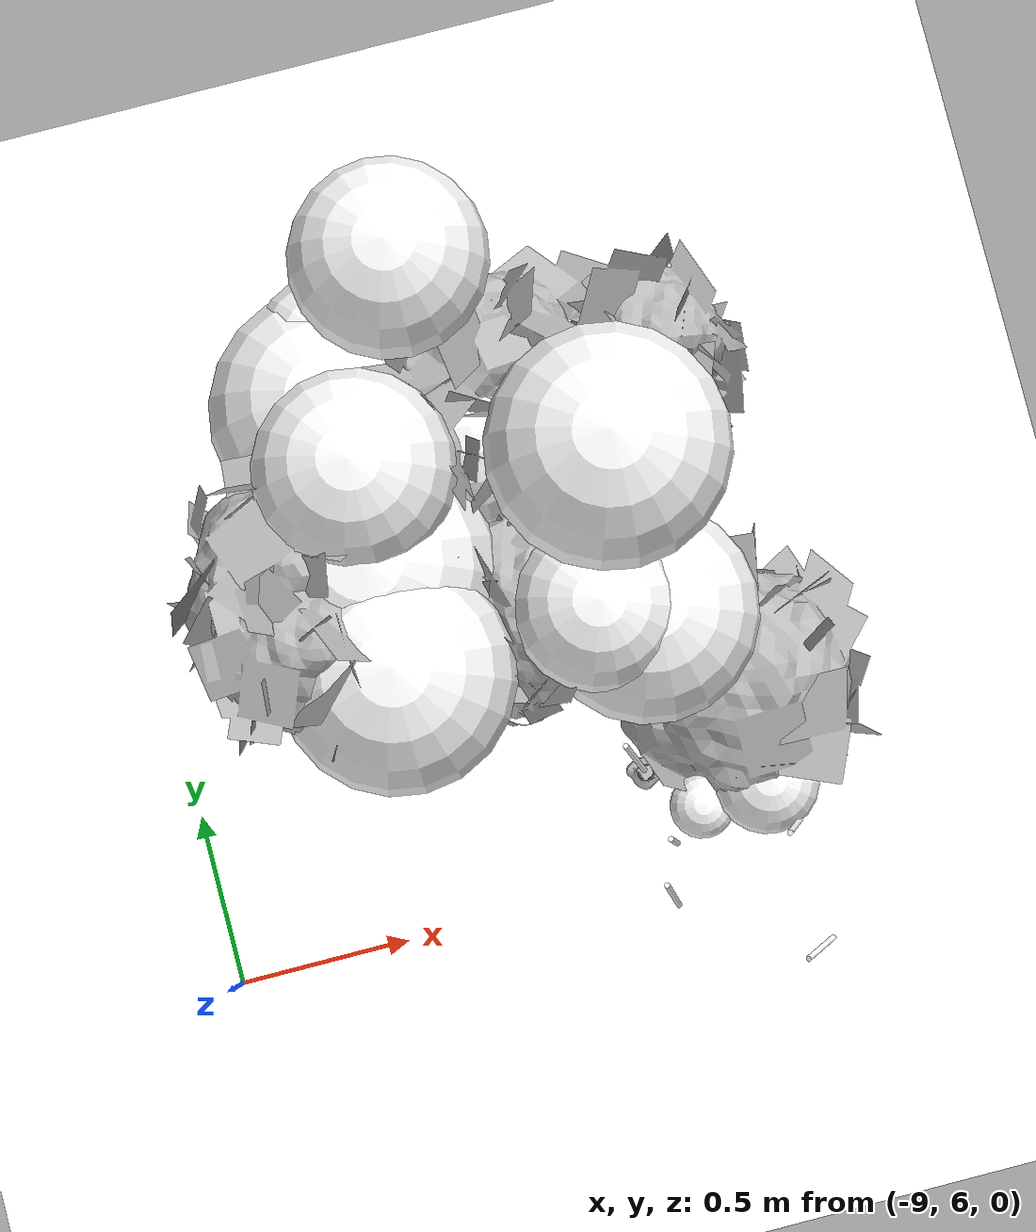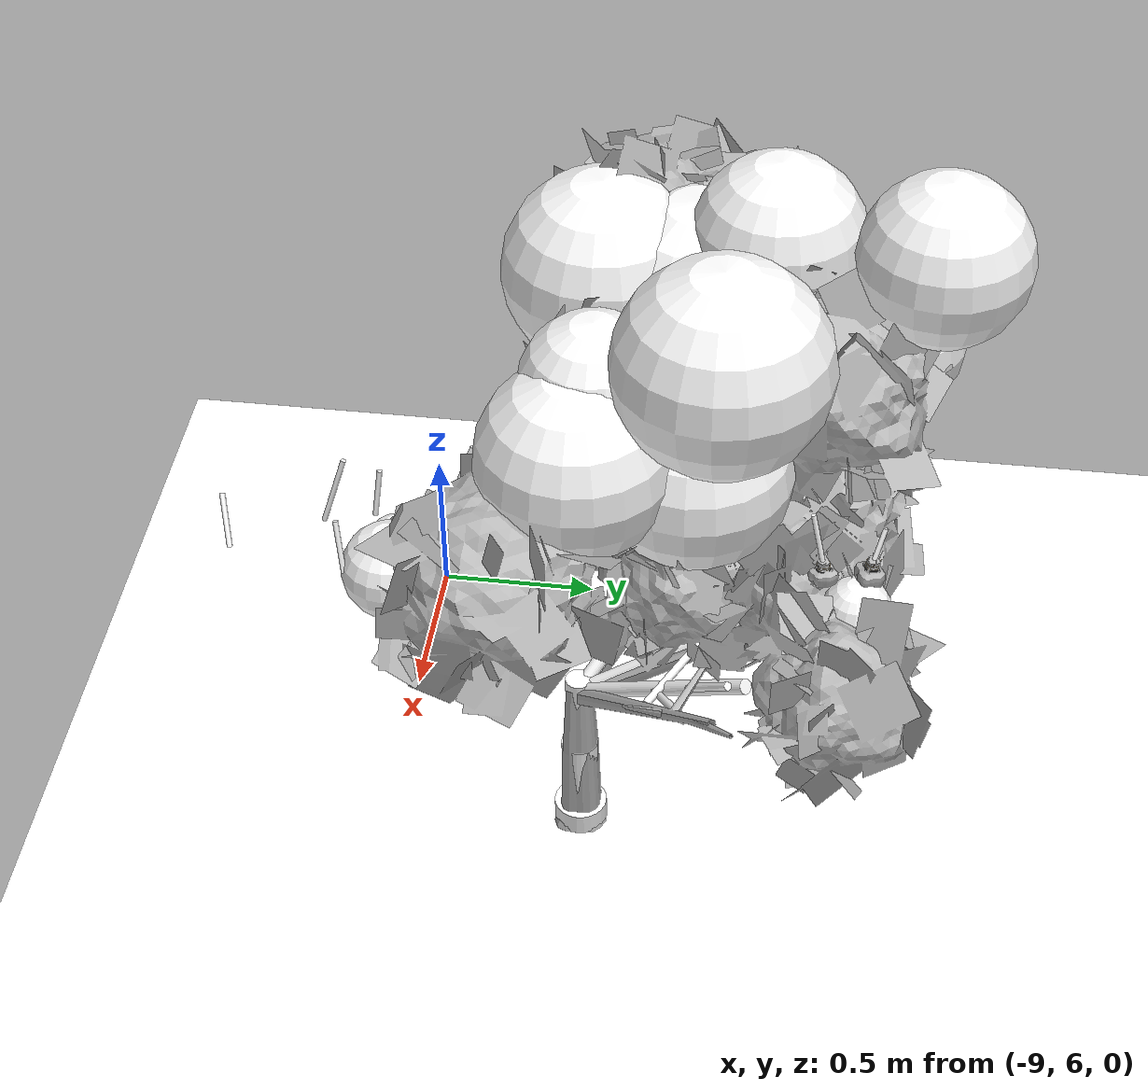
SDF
<sdf version="1.11">
 <world name="peach_orchard">
  <model name="ground">
   <static>true</static>
   <link name="link">
    <visual name="soil">
     <geometry><plane><normal>0 0 1</normal><size>32 22</size></plane></geometry>
     <material>
      <ambient>1 1 1 1</ambient>
      <diffuse>1 1 1 1</diffuse>
      <specular>0.1 0.1 0.1 1</specular>
      <pbr>
       <metal>
        <albedo_map>textures/soil_albedo.png</albedo_map>
        <normal_map type="tangent">textures/soil_normal.png</normal_map>
        <roughness>0.95</roughness>
        <metalness>0</metalness>
       </metal>
      </pbr>
     </material>
    </visual>
    <collision name="c_soil">
     <geometry><plane><normal>0 0 1</normal><size>32 22</size></plane></geometry>
    </collision>
   </link>
  </model>
  <model name="tree_r0_t6">
   <pose>-8 6.6 0 0 0 0</pose>
   <static>true</static>
   <link name="link">
    <visual name="tree_mesh">
     <pose>0 0 0 0 0 -0.0781681</pose>
     <geometry>
      <mesh><uri>model://peach_sim/meshes/peach_tree_a.glb</uri><scale>0.980483 0.980483 0.980483</scale></mesh>
     </geometry>
    </visual>
    <visual name="trunk_0">
     <pose>0 0 0.162888 0 0 0</pose>
     <geometry><cylinder><radius>0.0547791</radius><length>0.325776</length></cylinder></geometry>
     <material>
      <ambient>1 1 1 1</ambient>
      <diffuse>1 1 1 1</diffuse>
      <specular>0.1 0.1 0.1 1</specular>
      <pbr>
       <metal>
        <albedo_map>textures/bark_albedo.png</albedo_map>
        <normal_map type="tangent">textures/bark_normal.png</normal_map>
        <roughness>0.9</roughness>
        <metalness>0</metalness>
       </metal>
      </pbr>
     </material>
    </visual>
    <collision name="c_trunk_0">
     <pose>0 0 0.162888 0 0 0</pose>
     <geometry><cylinder><radius>0.0547791</radius><length>0.325776</length></cylinder></geometry>
    </collision>
    <visual name="trunk_1">
     <pose>0 0 0.459048 0 0 0</pose>
     <geometry><cylinder><radius>0.039441</radius><length>0.266544</length></cylinder></geometry>
     <material>
      <ambient>1 1 1 1</ambient>
      <diffuse>1 1 1 1</diffuse>
      <specular>0.1 0.1 0.1 1</specular>
      <pbr>
       <metal>
        <albedo_map>textures/bark_albedo.png</albedo_map>
        <normal_map type="tangent">textures/bark_normal.png</normal_map>
        <roughness>0.9</roughness>
        <metalness>0</metalness>
       </metal>
      </pbr>
     </material>
    </visual>
    <collision name="c_trunk_1">
     <pose>0 0 0.459048 0 0 0</pose>
     <geometry><cylinder><radius>0.039441</radius><length>0.266544</length></cylinder></geometry>
    </collision>
    <visual name="root_flare">
     <pose>0 0 0.035 0 0 0</pose>
     <geometry><cylinder><radius>0.0794297</radius><length>0.07</length></cylinder></geometry>
     <material>
      <ambient>1 1 1 1</ambient>
      <diffuse>1 1 1 1</diffuse>
      <specular>0.1 0.1 0.1 1</specular>
      <pbr>
       <metal>
        <albedo_map>textures/bark_albedo.png</albedo_map>
        <normal_map type="tangent">textures/bark_normal.png</normal_map>
        <roughness>0.95</roughness>
        <metalness>0</metalness>
       </metal>
      </pbr>
     </material>
    </visual>
    <visual name="scaffold_0">
     <pose>-0.0174406 0.378616 0.793169 0 0.990955 1.61683</pose>
     <geometry><cylinder><radius>0.022</radius><length>0.906145</length></cylinder></geometry>
     <material>
      <ambient>1 1 1 1</ambient>
      <diffuse>1 1 1 1</diffuse>
      <specular>0.1 0.1 0.1 1</specular>
      <pbr>
       <metal>
        <albedo_map>textures/bark_albedo.png</albedo_map>
        <normal_map type="tangent">textures/bark_normal.png</normal_map>
        <roughness>0.9</roughness>
        <metalness>0</metalness>
       </metal>
      </pbr>
     </material>
    </visual>
    <collision name="c_scaffold_0">
     <pose>-0.0174406 0.378616 0.793169 0 0.990955 1.61683</pose>
     <geometry><cylinder><radius>0.022</radius><length>0.906145</length></cylinder></geometry>
    </collision>
    <visual name="branchlet_0_0">
     <pose>0.0585909 0.567234 1.08269 0 0.566728 -0.358596</pose>
     <geometry><cylinder><radius>0.012</radius><length>0.342965</length></cylinder></geometry>
     <material>
      <ambient>1 1 1 1</ambient>
      <diffuse>1 1 1 1</diffuse>
      <specular>0.1 0.1 0.1 1</specular>
      <pbr>
       <metal>
        <albedo_map>textures/bark_albedo.png</albedo_map>
        <normal_map type="tangent">textures/bark_normal.png</normal_map>
        <roughness>0.9</roughness>
        <metalness>0</metalness>
       </metal>
      </pbr>
     </material>
    </visual>
    <visual name="branchlet_0_1">
     <pose>0.112618 0.292505 0.771448 0 1.63039 -0.473617</pose>
     <geometry><cylinder><radius>0.012</radius><length>0.290744</length></cylinder></geometry>
     <material>
      <ambient>1 1 1 1</ambient>
      <diffuse>1 1 1 1</diffuse>
      <specular>0.1 0.1 0.1 1</specular>
      <pbr>
       <metal>
        <albedo_map>textures/bark_albedo.png</albedo_map>
        <normal_map type="tangent">textures/bark_normal.png</normal_map>
        <roughness>0.9</roughness>
        <metalness>0</metalness>
       </metal>
      </pbr>
     </material>
    </visual>
    <visual name="branchlet_0_2">
     <pose>0.00428777 0.702797 0.989132 0 1.12587 1.2773</pose>
     <geometry><cylinder><radius>0.012</radius><length>0.243652</length></cylinder></geometry>
     <material>
      <ambient>1 1 1 1</ambient>
      <diffuse>1 1 1 1</diffuse>
      <specular>0.1 0.1 0.1 1</specular>
      <pbr>
       <metal>
        <albedo_map>textures/bark_albedo.png</albedo_map>
        <normal_map type="tangent">textures/bark_normal.png</normal_map>
        <roughness>0.9</roughness>
        <metalness>0</metalness>
       </metal>
      </pbr>
     </material>
    </visual>
    <visual name="scaffold_1">
     <pose>0.149773 0.254208 0.737338 0 0.992942 1.03838</pose>
     <geometry><cylinder><radius>0.022</radius><length>0.704479</length></cylinder></geometry>
     <material>
      <ambient>1 1 1 1</ambient>
      <diffuse>1 1 1 1</diffuse>
      <specular>0.1 0.1 0.1 1</specular>
      <pbr>
       <metal>
        <albedo_map>textures/bark_albedo.png</albedo_map>
        <normal_map type="tangent">textures/bark_normal.png</normal_map>
        <roughness>0.9</roughness>
        <metalness>0</metalness>
       </metal>
      </pbr>
     </material>
    </visual>
    <collision name="c_scaffold_1">
     <pose>0.149773 0.254208 0.737338 0 0.992942 1.03838</pose>
     <geometry><cylinder><radius>0.022</radius><length>0.704479</length></cylinder></geometry>
    </collision>
    <visual name="branchlet_1_0">
     <pose>0.248428 0.385078 0.859269 0 0.897387 0.852193</pose>
     <geometry><cylinder><radius>0.012</radius><length>0.256629</length></cylinder></geometry>
     <material>
      <ambient>1 1 1 1</ambient>
      <diffuse>1 1 1 1</diffuse>
      <specular>0.1 0.1 0.1 1</specular>
      <pbr>
       <metal>
        <albedo_map>textures/bark_albedo.png</albedo_map>
        <normal_map type="tangent">textures/bark_normal.png</normal_map>
        <roughness>0.9</roughness>
        <metalness>0</metalness>
       </metal>
      </pbr>
     </material>
    </visual>
    <visual name="branchlet_1_1">
     <pose>0.268327 0.292479 0.800905 0 1.06685 0.420908</pose>
     <geometry><cylinder><radius>0.012</radius><length>0.326302</length></cylinder></geometry>
     <material>
      <ambient>1 1 1 1</ambient>
      <diffuse>1 1 1 1</diffuse>
      <specular>0.1 0.1 0.1 1</specular>
      <pbr>
       <metal>
        <albedo_map>textures/bark_albedo.png</albedo_map>
        <normal_map type="tangent">textures/bark_normal.png</normal_map>
        <roughness>0.9</roughness>
        <metalness>0</metalness>
       </metal>
      </pbr>
     </material>
    </visual>
    <visual name="scaffold_2">
     <pose>-0.267067 0.242515 0.846124 0 0.875133 2.40434</pose>
     <geometry><cylinder><radius>0.022</radius><length>0.939901</length></cylinder></geometry>
     <material>
      <ambient>1 1 1 1</ambient>
      <diffuse>1 1 1 1</diffuse>
      <specular>0.1 0.1 0.1 1</specular>
      <pbr>
       <metal>
        <albedo_map>textures/bark_albedo.png</albedo_map>
        <normal_map type="tangent">textures/bark_normal.png</normal_map>
        <roughness>0.9</roughness>
        <metalness>0</metalness>
       </metal>
      </pbr>
     </material>
    </visual>
    <collision name="c_scaffold_2">
     <pose>-0.267067 0.242515 0.846124 0 0.875133 2.40434</pose>
     <geometry><cylinder><radius>0.022</radius><length>0.939901</length></cylinder></geometry>
    </collision>
    <visual name="branchlet_2_0">
     <pose>-0.21485 0.131584 0.954682 0 0.688994 -1.2078</pose>
     <geometry><cylinder><radius>0.012</radius><length>0.326259</length></cylinder></geometry>
     <material>
      <ambient>1 1 1 1</ambient>
      <diffuse>1 1 1 1</diffuse>
      <specular>0.1 0.1 0.1 1</specular>
      <pbr>
       <metal>
        <albedo_map>textures/bark_albedo.png</albedo_map>
        <normal_map type="tangent">textures/bark_normal.png</normal_map>
        <roughness>0.9</roughness>
        <metalness>0</metalness>
       </metal>
      </pbr>
     </material>
    </visual>
    <visual name="branchlet_2_1">
     <pose>-0.569601 0.468223 1.04753 0 1.50868 2.6485</pose>
     <geometry><cylinder><radius>0.012</radius><length>0.30078</length></cylinder></geometry>
     <material>
      <ambient>1 1 1 1</ambient>
      <diffuse>1 1 1 1</diffuse>
      <specular>0.1 0.1 0.1 1</specular>
      <pbr>
       <metal>
        <albedo_map>textures/bark_albedo.png</albedo_map>
        <normal_map type="tangent">textures/bark_normal.png</normal_map>
        <roughness>0.9</roughness>
        <metalness>0</metalness>
       </metal>
      </pbr>
     </material>
    </visual>
    <visual name="canopy_0">
     <pose>-0.0832478 0.94194 2.13016 0 0 0</pose>
     <geometry><sphere><radius>0.229958</radius></sphere></geometry>
     <material>
      <ambient>1 1 1 1</ambient>
      <diffuse>1 1 1 1</diffuse>
      <specular>0.1 0.1 0.1 1</specular>
      <pbr>
       <metal>
        <albedo_map>textures/leaf_albedo.png</albedo_map>
        <normal_map type="tangent">textures/leaf_normal.png</normal_map>
        <roughness>0.85</roughness>
        <metalness>0</metalness>
       </metal>
      </pbr>
     </material>
    </visual>
    <collision name="c_canopy_0">
     <pose>-0.0832478 0.94194 2.13016 0 0 0</pose>
     <geometry><sphere><radius>0.229958</radius></sphere></geometry>
    </collision>
    <visual name="canopy_1">
     <pose>0.29434 0.419337 2.03276 0 0 0</pose>
     <geometry><sphere><radius>0.285725</radius></sphere></geometry>
     <material>
      <ambient>1 1 1 1</ambient>
      <diffuse>1 1 1 1</diffuse>
      <specular>0.1 0.1 0.1 1</specular>
      <pbr>
       <metal>
        <albedo_map>textures/leaf_albedo.png</albedo_map>
        <normal_map type="tangent">textures/leaf_normal.png</normal_map>
        <roughness>0.85</roughness>
        <metalness>0</metalness>
       </metal>
      </pbr>
     </material>
    </visual>
    <collision name="c_canopy_1">
     <pose>0.29434 0.419337 2.03276 0 0 0</pose>
     <geometry><sphere><radius>0.285725</radius></sphere></geometry>
    </collision>
    <visual name="canopy_2">
     <pose>-0.306476 0.303746 1.78702 0 0 0</pose>
     <geometry><sphere><radius>0.308704</radius></sphere></geometry>
     <material>
      <ambient>1 1 1 1</ambient>
      <diffuse>1 1 1 1</diffuse>
      <specular>0.1 0.1 0.1 1</specular>
      <pbr>
       <metal>
        <albedo_map>textures/leaf_albedo.png</albedo_map>
        <normal_map type="tangent">textures/leaf_normal.png</normal_map>
        <roughness>0.85</roughness>
        <metalness>0</metalness>
       </metal>
      </pbr>
     </material>
    </visual>
    <collision name="c_canopy_2">
     <pose>-0.306476 0.303746 1.78702 0 0 0</pose>
     <geometry><sphere><radius>0.308704</radius></sphere></geometry>
    </collision>
    <visual name="canopy_3">
     <pose>-0.254885 0.821229 1.74167 0 0 0</pose>
     <geometry><sphere><radius>0.206323</radius></sphere></geometry>
     <material>
      <ambient>1 1 1 1</ambient>
      <diffuse>1 1 1 1</diffuse>
      <specular>0.1 0.1 0.1 1</specular>
      <pbr>
       <metal>
        <albedo_map>textures/leaf_albedo.png</albedo_map>
        <normal_map type="tangent">textures/leaf_normal.png</normal_map>
        <roughness>0.85</roughness>
        <metalness>0</metalness>
       </metal>
      </pbr>
     </material>
    </visual>
    <visual name="canopy_4">
     <pose>0.306445 0.0513098 1.70699 0 0 0</pose>
     <geometry><sphere><radius>0.26745</radius></sphere></geometry>
     <material>
      <ambient>1 1 1 1</ambient>
      <diffuse>1 1 1 1</diffuse>
      <specular>0.1 0.1 0.1 1</specular>
      <pbr>
       <metal>
        <albedo_map>textures/leaf_albedo.png</albedo_map>
        <normal_map type="tangent">textures/leaf_normal.png</normal_map>
        <roughness>0.85</roughness>
        <metalness>0</metalness>
       </metal>
      </pbr>
     </material>
    </visual>
    <visual name="canopy_5">
     <pose>-0.3017 0.0445093 1.86036 0 0 0</pose>
     <geometry><sphere><radius>0.280439</radius></sphere></geometry>
     <material>
      <ambient>1 1 1 1</ambient>
      <diffuse>1 1 1 1</diffuse>
      <specular>0.1 0.1 0.1 1</specular>
      <pbr>
       <metal>
        <albedo_map>textures/leaf_albedo.png</albedo_map>
        <normal_map type="tangent">textures/leaf_normal.png</normal_map>
        <roughness>0.85</roughness>
        <metalness>0</metalness>
       </metal>
      </pbr>
     </material>
    </visual>
    <visual name="canopy_6">
     <pose>-0.278276 0.511084 2.01604 0 0 0</pose>
     <geometry><sphere><radius>0.236681</radius></sphere></geometry>
     <material>
      <ambient>1 1 1 1</ambient>
      <diffuse>1 1 1 1</diffuse>
      <specular>0.1 0.1 0.1 1</specular>
      <pbr>
       <metal>
        <albedo_map>textures/leaf_albedo.png</albedo_map>
        <normal_map type="tangent">textures/leaf_normal.png</normal_map>
        <roughness>0.85</roughness>
        <metalness>0</metalness>
       </metal>
      </pbr>
     </material>
    </visual>
    <visual name="canopy_7">
     <pose>0.18785 0.0845961 1.85243 0 0 0</pose>
     <geometry><sphere><radius>0.201246</radius></sphere></geometry>
     <material>
      <ambient>1 1 1 1</ambient>
      <diffuse>1 1 1 1</diffuse>
      <specular>0.1 0.1 0.1 1</specular>
      <pbr>
       <metal>
        <albedo_map>textures/leaf_albedo.png</albedo_map>
        <normal_map type="tangent">textures/leaf_normal.png</normal_map>
        <roughness>0.85</roughness>
        <metalness>0</metalness>
       </metal>
      </pbr>
     </material>
    </visual>
    <visual name="canopy_8">
     <pose>-0.300096 0.706661 1.69822 0 0 0</pose>
     <geometry><sphere><radius>0.29467</radius></sphere></geometry>
     <material>
      <ambient>1 1 1 1</ambient>
      <diffuse>1 1 1 1</diffuse>
      <specular>0.1 0.1 0.1 1</specular>
      <pbr>
       <metal>
        <albedo_map>textures/leaf_albedo.png</albedo_map>
        <normal_map type="tangent">textures/leaf_normal.png</normal_map>
        <roughness>0.85</roughness>
        <metalness>0</metalness>
       </metal>
      </pbr>
     </material>
    </visual>
    <visual name="canopy_9">
     <pose>0.188999 0.346029 1.60002 0 0 0</pose>
     <geometry><sphere><radius>0.262658</radius></sphere></geometry>
     <material>
      <ambient>1 1 1 1</ambient>
      <diffuse>1 1 1 1</diffuse>
      <specular>0.1 0.1 0.1 1</specular>
      <pbr>
       <metal>
        <albedo_map>textures/leaf_albedo.png</albedo_map>
        <normal_map type="tangent">textures/leaf_normal.png</normal_map>
        <roughness>0.85</roughness>
        <metalness>0</metalness>
       </metal>
      </pbr>
     </material>
    </visual>
    <visual name="canopy_10">
     <pose>0.000163594 0.549046 1.76894 0 0 0</pose>
     <geometry><sphere><radius>0.217612</radius></sphere></geometry>
     <material>
      <ambient>1 1 1 1</ambient>
      <diffuse>1 1 1 1</diffuse>
      <specular>0.1 0.1 0.1 1</specular>
      <pbr>
       <metal>
        <albedo_map>textures/leaf_albedo.png</albedo_map>
        <normal_map type="tangent">textures/leaf_normal.png</normal_map>
        <roughness>0.85</roughness>
        <metalness>0</metalness>
       </metal>
      </pbr>
     </material>
    </visual>
    <visual name="foliage_0">
     <pose>0.500157 -0.406352 1.44862 0 0 0</pose>
     <geometry><sphere><radius>0.12915</radius></sphere></geometry>
     <material>
      <ambient>1 1 1 1</ambient>
      <diffuse>1 1 1 1</diffuse>
      <specular>0.1 0.1 0.1 1</specular>
      <pbr>
       <metal>
        <albedo_map>textures/leaf_albedo.png</albedo_map>
        <normal_map type="tangent">textures/leaf_normal.png</normal_map>
        <roughness>0.85</roughness>
        <metalness>0</metalness>
       </metal>
      </pbr>
     </material>
    </visual>
    <visual name="foliage_4">
     <pose>0.336263 -0.425211 1.38722 0 0 0</pose>
     <geometry><sphere><radius>0.0808137</radius></sphere></geometry>
     <material>
      <ambient>1 1 1 1</ambient>
      <diffuse>1 1 1 1</diffuse>
      <specular>0.1 0.1 0.1 1</specular>
      <pbr>
       <metal>
        <albedo_map>textures/leaf_albedo.png</albedo_map>
        <normal_map type="tangent">textures/leaf_normal.png</normal_map>
        <roughness>0.85</roughness>
        <metalness>0</metalness>
       </metal>
      </pbr>
     </material>
    </visual>
    <visual name="foliage_8">
     <pose>0.256496 0.793177 1.21115 0 0 0</pose>
     <geometry><sphere><radius>0.0960861</radius></sphere></geometry>
     <material>
      <ambient>1 1 1 1</ambient>
      <diffuse>1 1 1 1</diffuse>
      <specular>0.1 0.1 0.1 1</specular>
      <pbr>
       <metal>
        <albedo_map>textures/leaf_albedo.png</albedo_map>
        <normal_map type="tangent">textures/leaf_normal.png</normal_map>
        <roughness>0.85</roughness>
        <metalness>0</metalness>
       </metal>
      </pbr>
     </material>
    </visual>
    <visual name="twig_0">
     <pose>0.556668 -0.433813 1.48305 0 0.628923 2.71942</pose>
     <geometry><cylinder><radius>0.007</radius><length>0.129397</length></cylinder></geometry>
     <material>
      <ambient>1 1 1 1</ambient>
      <diffuse>1 1 1 1</diffuse>
      <specular>0.1 0.1 0.1 1</specular>
      <pbr>
       <metal>
        <albedo_map>textures/bark_albedo.png</albedo_map>
        <normal_map type="tangent">textures/bark_normal.png</normal_map>
        <roughness>0.9</roughness>
        <metalness>0</metalness>
       </metal>
      </pbr>
     </material>
    </visual>
    <visual name="twig_1">
     <pose>0.530211 -0.527851 1.53996 0 0.346634 -2.68987</pose>
     <geometry><cylinder><radius>0.007</radius><length>0.143321</length></cylinder></geometry>
     <material>
      <ambient>1 1 1 1</ambient>
      <diffuse>1 1 1 1</diffuse>
      <specular>0.1 0.1 0.1 1</specular>
      <pbr>
       <metal>
        <albedo_map>textures/bark_albedo.png</albedo_map>
        <normal_map type="tangent">textures/bark_normal.png</normal_map>
        <roughness>0.9</roughness>
        <metalness>0</metalness>
       </metal>
      </pbr>
     </material>
    </visual>
    <visual name="twig_2">
     <pose>0.511606 -0.823391 1.58202 0 0.665835 -2.81083</pose>
     <geometry><cylinder><radius>0.007</radius><length>0.138932</length></cylinder></geometry>
     <material>
      <ambient>1 1 1 1</ambient>
      <diffuse>1 1 1 1</diffuse>
      <specular>0.1 0.1 0.1 1</specular>
      <pbr>
       <metal>
        <albedo_map>textures/bark_albedo.png</albedo_map>
        <normal_map type="tangent">textures/bark_normal.png</normal_map>
        <roughness>0.9</roughness>
        <metalness>0</metalness>
       </metal>
      </pbr>
     </material>
    </visual>
    <visual name="twig_3">
     <pose>0.200704 -0.275771 1.51105 0 0.395341 2.08835</pose>
     <geometry><cylinder><radius>0.007</radius><length>0.211422</length></cylinder></geometry>
     <material>
      <ambient>1 1 1 1</ambient>
      <diffuse>1 1 1 1</diffuse>
      <specular>0.1 0.1 0.1 1</specular>
      <pbr>
       <metal>
        <albedo_map>textures/bark_albedo.png</albedo_map>
        <normal_map type="tangent">textures/bark_normal.png</normal_map>
        <roughness>0.9</roughness>
        <metalness>0</metalness>
       </metal>
      </pbr>
     </material>
    </visual>
    <visual name="twig_4">
     <pose>0.242229 -0.491055 1.47615 0 0.185583 2.47585</pose>
     <geometry><cylinder><radius>0.007</radius><length>0.139937</length></cylinder></geometry>
     <material>
      <ambient>1 1 1 1</ambient>
      <diffuse>1 1 1 1</diffuse>
      <specular>0.1 0.1 0.1 1</specular>
      <pbr>
       <metal>
        <albedo_map>textures/bark_albedo.png</albedo_map>
        <normal_map type="tangent">textures/bark_normal.png</normal_map>
        <roughness>0.9</roughness>
        <metalness>0</metalness>
       </metal>
      </pbr>
     </material>
    </visual>
    <visual name="twig_5">
     <pose>0.208342 -0.618457 1.44106 0 0.328035 1.97627</pose>
     <geometry><cylinder><radius>0.007</radius><length>0.204619</length></cylinder></geometry>
     <material>
      <ambient>1 1 1 1</ambient>
      <diffuse>1 1 1 1</diffuse>
      <specular>0.1 0.1 0.1 1</specular>
      <pbr>
       <metal>
        <albedo_map>textures/bark_albedo.png</albedo_map>
        <normal_map type="tangent">textures/bark_normal.png</normal_map>
        <roughness>0.9</roughness>
        <metalness>0</metalness>
       </metal>
      </pbr>
     </material>
    </visual>
    <visual name="twig_6">
     <pose>0.201865 0.484204 1.50765 0 0.412351 2.11364</pose>
     <geometry><cylinder><radius>0.007</radius><length>0.214826</length></cylinder></geometry>
     <material>
      <ambient>1 1 1 1</ambient>
      <diffuse>1 1 1 1</diffuse>
      <specular>0.1 0.1 0.1 1</specular>
      <pbr>
       <metal>
        <albedo_map>textures/bark_albedo.png</albedo_map>
        <normal_map type="tangent">textures/bark_normal.png</normal_map>
        <roughness>0.9</roughness>
        <metalness>0</metalness>
       </metal>
      </pbr>
     </material>
    </visual>
    <visual name="twig_7">
     <pose>0.208407 0.6782 1.40717 0 0.262333 -2.15284</pose>
     <geometry><cylinder><radius>0.007</radius><length>0.162631</length></cylinder></geometry>
     <material>
      <ambient>1 1 1 1</ambient>
      <diffuse>1 1 1 1</diffuse>
      <specular>0.1 0.1 0.1 1</specular>
      <pbr>
       <metal>
        <albedo_map>textures/bark_albedo.png</albedo_map>
        <normal_map type="tangent">textures/bark_normal.png</normal_map>
        <roughness>0.9</roughness>
        <metalness>0</metalness>
       </metal>
      </pbr>
     </material>
    </visual>
    <visual name="twig_8">
     <pose>0.195031 0.837857 1.39117 0 0.494541 2.57609</pose>
     <geometry><cylinder><radius>0.007</radius><length>0.107332</length></cylinder></geometry>
     <material>
      <ambient>1 1 1 1</ambient>
      <diffuse>1 1 1 1</diffuse>
      <specular>0.1 0.1 0.1 1</specular>
      <pbr>
       <metal>
        <albedo_map>textures/bark_albedo.png</albedo_map>
        <normal_map type="tangent">textures/bark_normal.png</normal_map>
        <roughness>0.9</roughness>
        <metalness>0</metalness>
       </metal>
      </pbr>
     </material>
    </visual>
   </link>
  </model>
  <model name="peach_tree_r0_t6_03">
   <pose>-7.78 6.29163 1.34357 0 0.0415538 -1.27531</pose>
   <static>true</static>
   <link name="bag">
    <visual name="bag_mesh">
     <pose>0 0 0.0439872 0 0 -0</pose>
     <geometry>
      <mesh><uri>model://peach_sim/meshes/bagged_peach.glb</uri><scale>0.992561 1.17944 0.999709</scale></mesh>
     </geometry>
    </visual>
    <visual name="body">
     <pose>0 0 0.0259872 0 0 0</pose>
     <geometry><ellipsoid><radii>0.037221 0.0306653 0.0280662</radii></ellipsoid></geometry>
     <material>
      <ambient>1 1 1 1</ambient>
      <diffuse>1 1 1 1</diffuse>
      <specular>0.1 0.1 0.1 1</specular>
      <pbr>
       <metal>
        <albedo_map>textures/paper_bag_albedo.png</albedo_map>
        <normal_map type="tangent">textures/paper_bag_normal.png</normal_map>
        <roughness>0.72</roughness>
        <metalness>0</metalness>
       </metal>
      </pbr>
     </material>
    </visual>
    <visual name="bottom_fold">
     <pose>0 0 0.012 0 0 0.35</pose>
     <geometry><box><size>0.0576926 0.0352651 0.022</size></box></geometry>
     <material>
      <ambient>1 1 1 1</ambient>
      <diffuse>1 1 1 1</diffuse>
      <specular>0.1 0.1 0.1 1</specular>
      <pbr>
       <metal>
        <albedo_map>textures/paper_bag_albedo.png</albedo_map>
        <normal_map type="tangent">textures/paper_bag_normal.png</normal_map>
        <roughness>0.8</roughness>
        <metalness>0</metalness>
       </metal>
      </pbr>
     </material>
    </visual>
    <visual name="fruit">
     <pose>0 0 0.0185827 0 0 0</pose>
     <geometry><sphere><radius>0.025566</radius></sphere></geometry>
     <material>
      <ambient>1 1 1 1</ambient>
      <diffuse>1 1 1 1</diffuse>
      <specular>0.1 0.1 0.1 1</specular>
      <pbr>
       <metal>
        <albedo_map>textures/fruit_skin_albedo.png</albedo_map>
        <normal_map type="tangent">textures/fruit_skin_normal.png</normal_map>
        <roughness>0.55</roughness>
        <metalness>0</metalness>
       </metal>
      </pbr>
     </material>
    </visual>
    <visual name="neck">
     <pose>0 0 0.0609744 0 0 0</pose>
     <geometry><cylinder><radius>0.013</radius><length>0.018</length></cylinder></geometry>
     <material>
      <ambient>1 1 1 1</ambient>
      <diffuse>1 1 1 1</diffuse>
      <specular>0.1 0.1 0.1 1</specular>
      <pbr>
       <metal>
        <albedo_map>textures/paper_bag_albedo.png</albedo_map>
        <normal_map type="tangent">textures/paper_bag_normal.png</normal_map>
        <roughness>0.75</roughness>
        <metalness>0</metalness>
       </metal>
      </pbr>
     </material>
    </visual>
    <visual name="gather">
     <pose>0 0 0.0419744 0 0 0</pose>
     <geometry><cylinder><radius>0.019</radius><length>0.02</length></cylinder></geometry>
     <material>
      <ambient>1 1 1 1</ambient>
      <diffuse>1 1 1 1</diffuse>
      <specular>0.1 0.1 0.1 1</specular>
      <pbr>
       <metal>
        <albedo_map>textures/paper_bag_albedo.png</albedo_map>
        <normal_map type="tangent">textures/paper_bag_normal.png</normal_map>
        <roughness>0.8</roughness>
        <metalness>0</metalness>
       </metal>
      </pbr>
     </material>
    </visual>
    <visual name="inner_paper">
     <pose>0 0 0.0659744 0 0 0</pose>
     <geometry><cylinder><radius>0.01</radius><length>0.008</length></cylinder></geometry>
     <material>
      <ambient>0.180392 0.14902 0.133333 1</ambient>
      <diffuse>0.180392 0.14902 0.133333 1</diffuse>
      <specular>0.1 0.1 0.1 1</specular>
     </material>
    </visual>
    <visual name="wire_0">
     <pose>0 0 0.0559744 0 0 0</pose>
     <geometry><cylinder><radius>0.0205</radius><length>0.0035</length></cylinder></geometry>
     <material>
      <ambient>0.25 0.25 0.25 1</ambient>
      <diffuse>0.25 0.25 0.25 1</diffuse>
      <specular>0.1 0.1 0.1 1</specular>
     </material>
    </visual>
    <visual name="wire_1">
     <pose>0 0 0.0629744 0 0 0</pose>
     <geometry><cylinder><radius>0.0205</radius><length>0.0035</length></cylinder></geometry>
     <material>
      <ambient>0.25 0.25 0.25 1</ambient>
      <diffuse>0.25 0.25 0.25 1</diffuse>
      <specular>0.1 0.1 0.1 1</specular>
     </material>
    </visual>
    <visual name="wire_tail">
     <pose>0.01 0 0.0639744 0 0.521618 0</pose>
     <geometry><cylinder><radius>0.0012</radius><length>0.026</length></cylinder></geometry>
     <material>
      <ambient>0.25 0.25 0.25 1</ambient>
      <diffuse>0.25 0.25 0.25 1</diffuse>
      <specular>0.1 0.1 0.1 1</specular>
     </material>
    </visual>
    <collision name="c_body">
     <pose>0 0 0.0259872 0 0 0</pose>
     <geometry><cylinder><radius>0.037221</radius><length>0.0519744</length></cylinder></geometry>
    </collision>
   </link>
  </model>
  <model name="peach_tree_r0_t6_06">
   <pose>-7.78 7.05106 1.3363 0 0.0757611 -0.736358</pose>
   <static>true</static>
   <link name="bag">
    <visual name="bag_mesh">
     <pose>0 0 0.0455759 0 0 -0</pose>
     <geometry>
      <mesh><uri>model://peach_sim/meshes/bagged_peach.glb</uri><scale>0.930754 1.00698 1.03582</scale></mesh>
     </geometry>
    </visual>
    <visual name="body">
     <pose>0 0 0.0275759 0 0 0</pose>
     <geometry><ellipsoid><radii>0.0349033 0.0261815 0.029782</radii></ellipsoid></geometry>
     <material>
      <ambient>1 1 1 1</ambient>
      <diffuse>1 1 1 1</diffuse>
      <specular>0.1 0.1 0.1 1</specular>
      <pbr>
       <metal>
        <albedo_map>textures/paper_bag_albedo.png</albedo_map>
        <normal_map type="tangent">textures/paper_bag_normal.png</normal_map>
        <roughness>0.72</roughness>
        <metalness>0</metalness>
       </metal>
      </pbr>
     </material>
    </visual>
    <visual name="bottom_fold">
     <pose>0 0 0.012 0 0 0.35</pose>
     <geometry><box><size>0.0541001 0.0301087 0.022</size></box></geometry>
     <material>
      <ambient>1 1 1 1</ambient>
      <diffuse>1 1 1 1</diffuse>
      <specular>0.1 0.1 0.1 1</specular>
      <pbr>
       <metal>
        <albedo_map>textures/paper_bag_albedo.png</albedo_map>
        <normal_map type="tangent">textures/paper_bag_normal.png</normal_map>
        <roughness>0.8</roughness>
        <metalness>0</metalness>
       </metal>
      </pbr>
     </material>
    </visual>
    <visual name="fruit">
     <pose>0 0 0.0206564 0 0 0</pose>
     <geometry><sphere><radius>0.0277227</radius></sphere></geometry>
     <material>
      <ambient>1 1 1 1</ambient>
      <diffuse>1 1 1 1</diffuse>
      <specular>0.1 0.1 0.1 1</specular>
      <pbr>
       <metal>
        <albedo_map>textures/fruit_skin_albedo.png</albedo_map>
        <normal_map type="tangent">textures/fruit_skin_normal.png</normal_map>
        <roughness>0.55</roughness>
        <metalness>0</metalness>
       </metal>
      </pbr>
     </material>
    </visual>
    <visual name="neck">
     <pose>0 0 0.0641518 0 0 0</pose>
     <geometry><cylinder><radius>0.013</radius><length>0.018</length></cylinder></geometry>
     <material>
      <ambient>1 1 1 1</ambient>
      <diffuse>1 1 1 1</diffuse>
      <specular>0.1 0.1 0.1 1</specular>
      <pbr>
       <metal>
        <albedo_map>textures/paper_bag_albedo.png</albedo_map>
        <normal_map type="tangent">textures/paper_bag_normal.png</normal_map>
        <roughness>0.75</roughness>
        <metalness>0</metalness>
       </metal>
      </pbr>
     </material>
    </visual>
    <visual name="gather">
     <pose>0 0 0.0451518 0 0 0</pose>
     <geometry><cylinder><radius>0.019</radius><length>0.02</length></cylinder></geometry>
     <material>
      <ambient>1 1 1 1</ambient>
      <diffuse>1 1 1 1</diffuse>
      <specular>0.1 0.1 0.1 1</specular>
      <pbr>
       <metal>
        <albedo_map>textures/paper_bag_albedo.png</albedo_map>
        <normal_map type="tangent">textures/paper_bag_normal.png</normal_map>
        <roughness>0.8</roughness>
        <metalness>0</metalness>
       </metal>
      </pbr>
     </material>
    </visual>
    <visual name="inner_paper">
     <pose>0 0 0.0691518 0 0 0</pose>
     <geometry><cylinder><radius>0.01</radius><length>0.008</length></cylinder></geometry>
     <material>
      <ambient>0.180392 0.14902 0.133333 1</ambient>
      <diffuse>0.180392 0.14902 0.133333 1</diffuse>
      <specular>0.1 0.1 0.1 1</specular>
     </material>
    </visual>
    <visual name="wire_0">
     <pose>0 0 0.0591518 0 0 0</pose>
     <geometry><cylinder><radius>0.0205</radius><length>0.0035</length></cylinder></geometry>
     <material>
      <ambient>0.25 0.25 0.25 1</ambient>
      <diffuse>0.25 0.25 0.25 1</diffuse>
      <specular>0.1 0.1 0.1 1</specular>
     </material>
    </visual>
    <visual name="wire_1">
     <pose>0 0 0.0661518 0 0 0</pose>
     <geometry><cylinder><radius>0.0205</radius><length>0.0035</length></cylinder></geometry>
     <material>
      <ambient>0.25 0.25 0.25 1</ambient>
      <diffuse>0.25 0.25 0.25 1</diffuse>
      <specular>0.1 0.1 0.1 1</specular>
     </material>
    </visual>
    <visual name="wire_tail">
     <pose>0.01 0 0.0671518 0 0.521618 0</pose>
     <geometry><cylinder><radius>0.0012</radius><length>0.026</length></cylinder></geometry>
     <material>
      <ambient>0.25 0.25 0.25 1</ambient>
      <diffuse>0.25 0.25 0.25 1</diffuse>
      <specular>0.1 0.1 0.1 1</specular>
     </material>
    </visual>
    <collision name="c_body">
     <pose>0 0 0.0275759 0 0 0</pose>
     <geometry><cylinder><radius>0.0349033</radius><length>0.0551518</length></cylinder></geometry>
    </collision>
   </link>
  </model>
  <model name="peach_tree_r0_t6_07">
   <pose>-7.78 7.29582 1.27 0 6.98054e-07 -0.998017</pose>
   <static>true</static>
   <link name="bag">
    <visual name="bag_mesh">
     <pose>0 0 0.0383161 0 0 -0</pose>
     <geometry>
      <mesh><uri>model://peach_sim/meshes/bagged_peach.glb</uri><scale>0.927639 1.09869 0.870821</scale></mesh>
     </geometry>
    </visual>
    <visual name="body">
     <pose>0 0 0.0203161 0 0 0</pose>
     <geometry><ellipsoid><radii>0.0347865 0.0285659 0.0219414</radii></ellipsoid></geometry>
     <material>
      <ambient>1 1 1 1</ambient>
      <diffuse>1 1 1 1</diffuse>
      <specular>0.1 0.1 0.1 1</specular>
      <pbr>
       <metal>
        <albedo_map>textures/paper_bag_albedo.png</albedo_map>
        <normal_map type="tangent">textures/paper_bag_normal.png</normal_map>
        <roughness>0.72</roughness>
        <metalness>0</metalness>
       </metal>
      </pbr>
     </material>
    </visual>
    <visual name="bottom_fold">
     <pose>0 0 0.012 0 0 0.35</pose>
     <geometry><box><size>0.053919 0.0328508 0.022</size></box></geometry>
     <material>
      <ambient>1 1 1 1</ambient>
      <diffuse>1 1 1 1</diffuse>
      <specular>0.1 0.1 0.1 1</specular>
      <pbr>
       <metal>
        <albedo_map>textures/paper_bag_albedo.png</albedo_map>
        <normal_map type="tangent">textures/paper_bag_normal.png</normal_map>
        <roughness>0.8</roughness>
        <metalness>0</metalness>
       </metal>
      </pbr>
     </material>
    </visual>
    <visual name="fruit">
     <pose>0 0 0.0193423 0 0 0</pose>
     <geometry><sphere><radius>0.026356</radius></sphere></geometry>
     <material>
      <ambient>1 1 1 1</ambient>
      <diffuse>1 1 1 1</diffuse>
      <specular>0.1 0.1 0.1 1</specular>
      <pbr>
       <metal>
        <albedo_map>textures/fruit_skin_albedo.png</albedo_map>
        <normal_map type="tangent">textures/fruit_skin_normal.png</normal_map>
        <roughness>0.55</roughness>
        <metalness>0</metalness>
       </metal>
      </pbr>
     </material>
    </visual>
    <visual name="neck">
     <pose>0 0 0.0496323 0 0 0</pose>
     <geometry><cylinder><radius>0.013</radius><length>0.018</length></cylinder></geometry>
     <material>
      <ambient>1 1 1 1</ambient>
      <diffuse>1 1 1 1</diffuse>
      <specular>0.1 0.1 0.1 1</specular>
      <pbr>
       <metal>
        <albedo_map>textures/paper_bag_albedo.png</albedo_map>
        <normal_map type="tangent">textures/paper_bag_normal.png</normal_map>
        <roughness>0.75</roughness>
        <metalness>0</metalness>
       </metal>
      </pbr>
     </material>
    </visual>
    <visual name="gather">
     <pose>0 0 0.0306323 0 0 0</pose>
     <geometry><cylinder><radius>0.019</radius><length>0.02</length></cylinder></geometry>
     <material>
      <ambient>1 1 1 1</ambient>
      <diffuse>1 1 1 1</diffuse>
      <specular>0.1 0.1 0.1 1</specular>
      <pbr>
       <metal>
        <albedo_map>textures/paper_bag_albedo.png</albedo_map>
        <normal_map type="tangent">textures/paper_bag_normal.png</normal_map>
        <roughness>0.8</roughness>
        <metalness>0</metalness>
       </metal>
      </pbr>
     </material>
    </visual>
    <visual name="inner_paper">
     <pose>0 0 0.0546323 0 0 0</pose>
     <geometry><cylinder><radius>0.01</radius><length>0.008</length></cylinder></geometry>
     <material>
      <ambient>0.180392 0.14902 0.133333 1</ambient>
      <diffuse>0.180392 0.14902 0.133333 1</diffuse>
      <specular>0.1 0.1 0.1 1</specular>
     </material>
    </visual>
    <visual name="wire_0">
     <pose>0 0 0.0446323 0 0 0</pose>
     <geometry><cylinder><radius>0.0205</radius><length>0.0035</length></cylinder></geometry>
     <material>
      <ambient>0.25 0.25 0.25 1</ambient>
      <diffuse>0.25 0.25 0.25 1</diffuse>
      <specular>0.1 0.1 0.1 1</specular>
     </material>
    </visual>
    <visual name="wire_1">
     <pose>0 0 0.0516323 0 0 0</pose>
     <geometry><cylinder><radius>0.0205</radius><length>0.0035</length></cylinder></geometry>
     <material>
      <ambient>0.25 0.25 0.25 1</ambient>
      <diffuse>0.25 0.25 0.25 1</diffuse>
      <specular>0.1 0.1 0.1 1</specular>
     </material>
    </visual>
    <visual name="wire_tail">
     <pose>0.01 0 0.0526323 0 0.521618 0</pose>
     <geometry><cylinder><radius>0.0012</radius><length>0.026</length></cylinder></geometry>
     <material>
      <ambient>0.25 0.25 0.25 1</ambient>
      <diffuse>0.25 0.25 0.25 1</diffuse>
      <specular>0.1 0.1 0.1 1</specular>
     </material>
    </visual>
    <collision name="c_body">
     <pose>0 0 0.0203161 0 0 0</pose>
     <geometry><cylinder><radius>0.0347865</radius><length>0.0406323</length></cylinder></geometry>
    </collision>
   </link>
  </model>
  <model name="peach_tree_r0_t6_08">
   <pose>-7.78 7.41369 1.27 0 0.148635 1.88889</pose>
   <static>true</static>
   <link name="bag">
    <visual name="bag_mesh">
     <pose>0 0 0.0463815 0 0 0</pose>
     <geometry>
      <mesh><uri>model://peach_sim/meshes/bagged_peach.glb</uri><scale>0.969037 1.16311 1.05413</scale></mesh>
     </geometry>
    </visual>
    <visual name="body">
     <pose>0 0 0.0283815 0 0 0</pose>
     <geometry><ellipsoid><radii>0.0363389 0.0302408 0.030652</radii></ellipsoid></geometry>
     <material>
      <ambient>1 1 1 1</ambient>
      <diffuse>1 1 1 1</diffuse>
      <specular>0.1 0.1 0.1 1</specular>
      <pbr>
       <metal>
        <albedo_map>textures/paper_bag_albedo.png</albedo_map>
        <normal_map type="tangent">textures/paper_bag_normal.png</normal_map>
        <roughness>0.72</roughness>
        <metalness>0</metalness>
       </metal>
      </pbr>
     </material>
    </visual>
    <visual name="bottom_fold">
     <pose>0 0 0.012 0 0 0.35</pose>
     <geometry><box><size>0.0563253 0.034777 0.022</size></box></geometry>
     <material>
      <ambient>1 1 1 1</ambient>
      <diffuse>1 1 1 1</diffuse>
      <specular>0.1 0.1 0.1 1</specular>
      <pbr>
       <metal>
        <albedo_map>textures/paper_bag_albedo.png</albedo_map>
        <normal_map type="tangent">textures/paper_bag_normal.png</normal_map>
        <roughness>0.8</roughness>
        <metalness>0</metalness>
       </metal>
      </pbr>
     </material>
    </visual>
    <visual name="fruit">
     <pose>0 0 0.0211031 0 0 0</pose>
     <geometry><sphere><radius>0.0281872</radius></sphere></geometry>
     <material>
      <ambient>1 1 1 1</ambient>
      <diffuse>1 1 1 1</diffuse>
      <specular>0.1 0.1 0.1 1</specular>
      <pbr>
       <metal>
        <albedo_map>textures/fruit_skin_albedo.png</albedo_map>
        <normal_map type="tangent">textures/fruit_skin_normal.png</normal_map>
        <roughness>0.55</roughness>
        <metalness>0</metalness>
       </metal>
      </pbr>
     </material>
    </visual>
    <visual name="neck">
     <pose>0 0 0.0657631 0 0 0</pose>
     <geometry><cylinder><radius>0.013</radius><length>0.018</length></cylinder></geometry>
     <material>
      <ambient>1 1 1 1</ambient>
      <diffuse>1 1 1 1</diffuse>
      <specular>0.1 0.1 0.1 1</specular>
      <pbr>
       <metal>
        <albedo_map>textures/paper_bag_albedo.png</albedo_map>
        <normal_map type="tangent">textures/paper_bag_normal.png</normal_map>
        <roughness>0.75</roughness>
        <metalness>0</metalness>
       </metal>
      </pbr>
     </material>
    </visual>
    <visual name="gather">
     <pose>0 0 0.0467631 0 0 0</pose>
     <geometry><cylinder><radius>0.019</radius><length>0.02</length></cylinder></geometry>
     <material>
      <ambient>1 1 1 1</ambient>
      <diffuse>1 1 1 1</diffuse>
      <specular>0.1 0.1 0.1 1</specular>
      <pbr>
       <metal>
        <albedo_map>textures/paper_bag_albedo.png</albedo_map>
        <normal_map type="tangent">textures/paper_bag_normal.png</normal_map>
        <roughness>0.8</roughness>
        <metalness>0</metalness>
       </metal>
      </pbr>
     </material>
    </visual>
    <visual name="inner_paper">
     <pose>0 0 0.0707631 0 0 0</pose>
     <geometry><cylinder><radius>0.01</radius><length>0.008</length></cylinder></geometry>
     <material>
      <ambient>0.180392 0.14902 0.133333 1</ambient>
      <diffuse>0.180392 0.14902 0.133333 1</diffuse>
      <specular>0.1 0.1 0.1 1</specular>
     </material>
    </visual>
    <visual name="wire_0">
     <pose>0 0 0.0607631 0 0 0</pose>
     <geometry><cylinder><radius>0.0205</radius><length>0.0035</length></cylinder></geometry>
     <material>
      <ambient>0.25 0.25 0.25 1</ambient>
      <diffuse>0.25 0.25 0.25 1</diffuse>
      <specular>0.1 0.1 0.1 1</specular>
     </material>
    </visual>
    <visual name="wire_1">
     <pose>0 0 0.0677631 0 0 0</pose>
     <geometry><cylinder><radius>0.0205</radius><length>0.0035</length></cylinder></geometry>
     <material>
      <ambient>0.25 0.25 0.25 1</ambient>
      <diffuse>0.25 0.25 0.25 1</diffuse>
      <specular>0.1 0.1 0.1 1</specular>
     </material>
    </visual>
    <visual name="wire_tail">
     <pose>0.01 0 0.0687631 0 0.521618 0</pose>
     <geometry><cylinder><radius>0.0012</radius><length>0.026</length></cylinder></geometry>
     <material>
      <ambient>0.25 0.25 0.25 1</ambient>
      <diffuse>0.25 0.25 0.25 1</diffuse>
      <specular>0.1 0.1 0.1 1</specular>
     </material>
    </visual>
    <collision name="c_body">
     <pose>0 0 0.0283815 0 0 0</pose>
     <geometry><cylinder><radius>0.0363389</radius><length>0.0567631</length></cylinder></geometry>
    </collision>
   </link>
  </model>
 </world>
</sdf>
